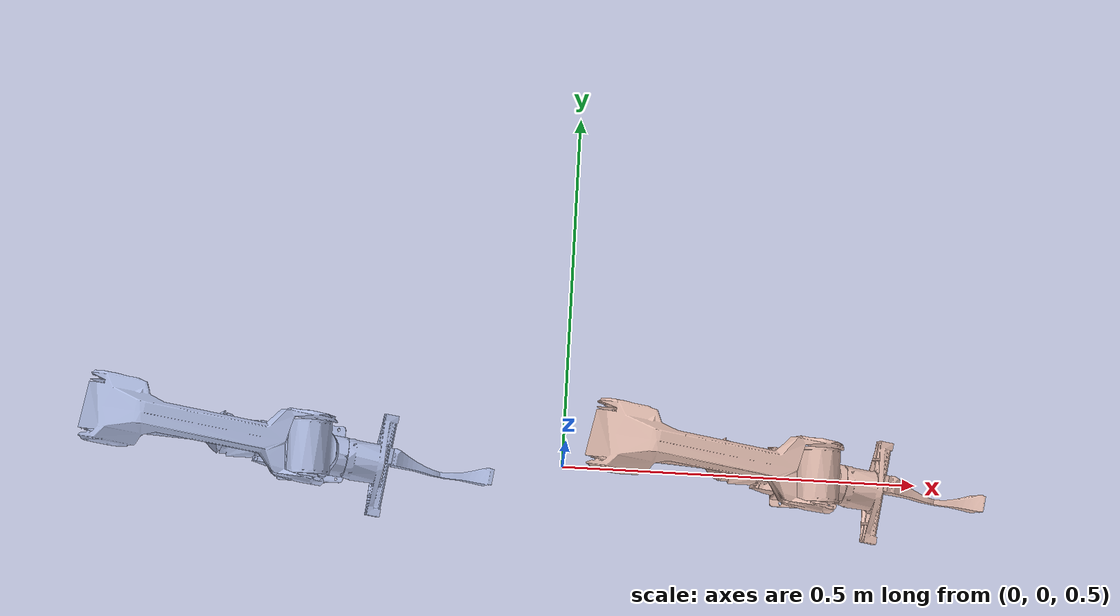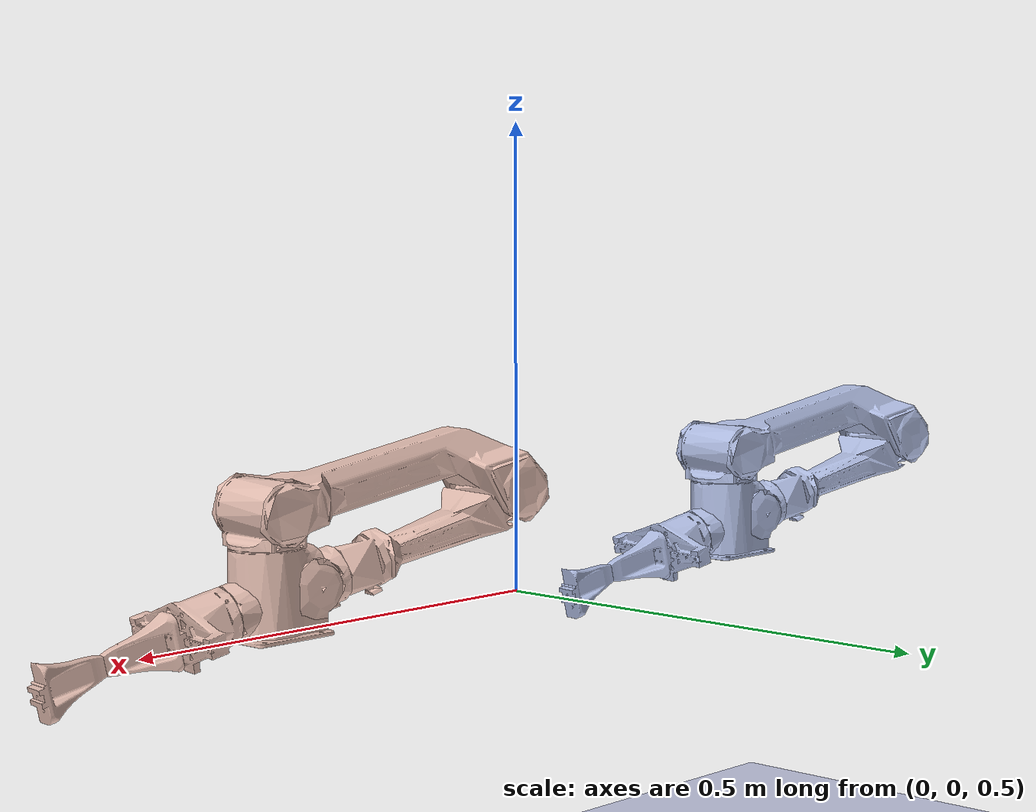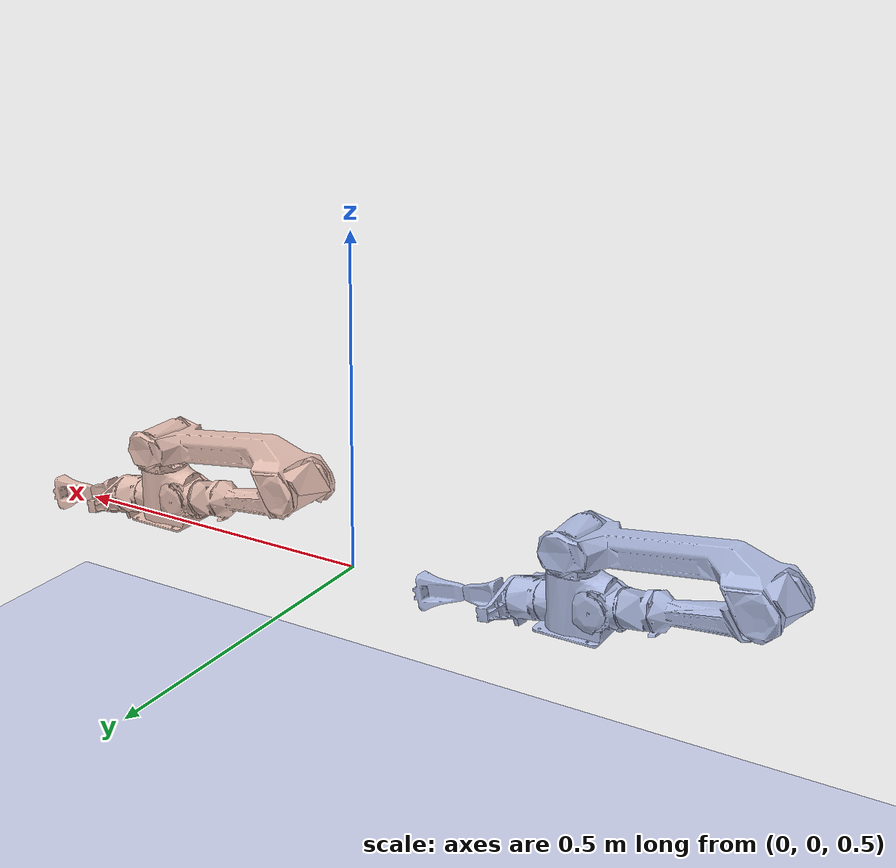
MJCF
<?xml version="1.0" encoding="utf-8"?>
<!-- Piper X Dual Arm Setup - Two robots side by side -->
<mujoco model="piper_dual">
  <compiler angle="radian" meshdir="piper_ros/src/piper_description/meshes"/>

  <option timestep="0.002" gravity="0 0 -9.81"/>

  <default>
    <joint damping="50" armature="0.5"/>
    <geom rgba="0.8 0.82 0.93 1" friction="1 0.005 0.0001"/>
  </default>

  <asset>
    <mesh name="base_link" file="base_link.STL"/>
    <mesh name="link1" file="link1.STL"/>
    <mesh name="link2" file="link2.STL"/>
    <mesh name="link3" file="link3.STL"/>
    <mesh name="link4" file="link4.STL"/>
    <mesh name="link5" file="link5.STL"/>
    <mesh name="link6" file="link6.STL"/>
    <mesh name="gripper_base" file="gripper_base.STL"/>
    <mesh name="link7" file="link7.STL"/>
    <mesh name="link8" file="link8.STL"/>
    <texture type="skybox" builtin="gradient" rgb1="0.3 0.5 0.7" rgb2="0 0 0" width="512" height="512"/>
    <texture name="grid" type="2d" builtin="checker" rgb1="0.2 0.2 0.2" rgb2="0.3 0.3 0.3" width="512" height="512"/>
    <material name="grid" texture="grid" texrepeat="8 8" reflectance="0.2"/>
  </asset>

  <worldbody>
    <light directional="true" diffuse="0.8 0.8 0.8" specular="0.2 0.2 0.2" pos="0 0 5" dir="0 0 -1"/>
    <light directional="true" diffuse="0.4 0.4 0.4" specular="0.1 0.1 0.1" pos="0 5 3" dir="0 -1 -0.5"/>

    <geom name="floor" type="plane" size="2 2 0.1" material="grid"/>

    <!-- ========== LEFT ARM ========== -->
    <body name="base_link_L" pos="-0.35 0 0.5">
      <inertial pos="-0.00474 0.00003 0.0415" mass="1.02"
                diaginertia="0.00283 0.00267 0.00090"/>
      <geom type="mesh" mesh="base_link" rgba="0.7 0.75 0.9 1"/>

      <body name="link1_L" pos="0 0 0.123">
        <inertial pos="0.00012 0.00010 -0.00439" mass="0.71"
                  diaginertia="0.00049 0.00040 0.00044"/>
        <joint name="L_joint1" type="hinge" axis="0 0 1"
               range="-2.618 2.618" damping="80"/>
        <geom type="mesh" mesh="link1" rgba="0.7 0.75 0.9 1"/>

        <body name="link2_L" pos="0 0 0" euler="1.5708 -0.1359 -3.1416">
          <inertial pos="0.199 -0.011 0.001" mass="1.17"
                    diaginertia="0.0679 0.0677 0.00117"/>
          <joint name="L_joint2" type="hinge" axis="0 0 1"
                 range="0 3.14" damping="100"/>
          <geom type="mesh" mesh="link2" rgba="0.7 0.75 0.9 1"/>

          <body name="link3_L" pos="0.28503 0 0" euler="0 0 -1.7939">
            <inertial pos="-0.020 -0.134 -0.0005" mass="0.5"
                      diaginertia="0.0138 0.0136 0.00045"/>
            <joint name="L_joint3" type="hinge" axis="0 0 1"
                   range="-2.967 0" damping="80"/>
            <geom type="mesh" mesh="link3" rgba="0.7 0.75 0.9 1"/>

            <body name="link4_L" pos="-0.021984 -0.25075 0" euler="1.5708 0 0">
              <inertial pos="-0.0001 0.0009 -0.005" mass="0.38"
                        diaginertia="0.00019 0.00019 0.00015"/>
              <joint name="L_joint4" type="hinge" axis="0 0 1"
                     range="-1.745 1.745" damping="40"/>
              <geom type="mesh" mesh="link4" rgba="0.7 0.75 0.9 1"/>

              <body name="link5_L" pos="0 0 0" euler="-1.5708 0 0">
                <inertial pos="-0.00004 -0.0566 -0.0037" mass="0.383"
                          diaginertia="0.00166 0.00164 0.00019"/>
                <joint name="L_joint5" type="hinge" axis="0 0 1"
                       range="-1.22 1.22" damping="40"/>
                <geom type="mesh" mesh="link5" rgba="0.7 0.75 0.9 1"/>

                <body name="link6_L" pos="0.0000883 -0.091 0" euler="1.5708 0 0">
                  <inertial pos="-0.00009 0.00001 -0.002" mass="0.007"
                            diaginertia="0.000001 0.000001 0.000001"/>
                  <joint name="L_joint6" type="hinge" axis="0 0 1"
                         range="-2.0944 2.0944" damping="30"/>
                  <geom type="mesh" mesh="link6" rgba="0.8 0.85 0.95 1"/>

                  <body name="gripper_base_L" pos="0 0 0">
                    <inertial pos="-0.0002 0.00008 0.032" mass="0.45"
                              diaginertia="0.00093 0.00071 0.00039"/>
                    <geom type="mesh" mesh="gripper_base" rgba="0.7 0.75 0.9 1"/>

                    <body name="link7_L" pos="0 0 0.1358" euler="1.5708 0 0">
                      <inertial pos="0.00065 -0.049 0.0097" mass="0.025"
                                diaginertia="0.000074 0.000075 0.000008"/>
                      <joint name="L_joint7" type="slide" axis="0 0 1"
                             range="0 0.035" damping="1"/>
                      <geom type="mesh" mesh="link7" rgba="0.7 0.75 0.9 1"/>
                    </body>

                    <body name="link8_L" pos="0 0 0.1358" euler="1.5708 0 -3.1416">
                      <inertial pos="0.00065 -0.049 0.0097" mass="0.025"
                                diaginertia="0.000074 0.000075 0.000008"/>
                      <joint name="L_joint8" type="slide" axis="0 0 -1"
                             range="-0.035 0" damping="1"/>
                      <geom type="mesh" mesh="link8" rgba="0.7 0.75 0.9 1"/>
                    </body>
                  </body>
                </body>
              </body>
            </body>
          </body>
        </body>
      </body>
    </body>

    <!-- ========== RIGHT ARM ========== -->
    <body name="base_link_R" pos="0.35 0 0.5">
      <inertial pos="-0.00474 0.00003 0.0415" mass="1.02"
                diaginertia="0.00283 0.00267 0.00090"/>
      <geom type="mesh" mesh="base_link" rgba="0.9 0.75 0.7 1"/>

      <body name="link1_R" pos="0 0 0.123">
        <inertial pos="0.00012 0.00010 -0.00439" mass="0.71"
                  diaginertia="0.00049 0.00040 0.00044"/>
        <joint name="R_joint1" type="hinge" axis="0 0 1"
               range="-2.618 2.618" damping="80"/>
        <geom type="mesh" mesh="link1" rgba="0.9 0.75 0.7 1"/>

        <body name="link2_R" pos="0 0 0" euler="1.5708 -0.1359 -3.1416">
          <inertial pos="0.199 -0.011 0.001" mass="1.17"
                    diaginertia="0.0679 0.0677 0.00117"/>
          <joint name="R_joint2" type="hinge" axis="0 0 1"
                 range="0 3.14" damping="100"/>
          <geom type="mesh" mesh="link2" rgba="0.9 0.75 0.7 1"/>

          <body name="link3_R" pos="0.28503 0 0" euler="0 0 -1.7939">
            <inertial pos="-0.020 -0.134 -0.0005" mass="0.5"
                      diaginertia="0.0138 0.0136 0.00045"/>
            <joint name="R_joint3" type="hinge" axis="0 0 1"
                   range="-2.967 0" damping="80"/>
            <geom type="mesh" mesh="link3" rgba="0.9 0.75 0.7 1"/>

            <body name="link4_R" pos="-0.021984 -0.25075 0" euler="1.5708 0 0">
              <inertial pos="-0.0001 0.0009 -0.005" mass="0.38"
                        diaginertia="0.00019 0.00019 0.00015"/>
              <joint name="R_joint4" type="hinge" axis="0 0 1"
                     range="-1.745 1.745" damping="40"/>
              <geom type="mesh" mesh="link4" rgba="0.9 0.75 0.7 1"/>

              <body name="link5_R" pos="0 0 0" euler="-1.5708 0 0">
                <inertial pos="-0.00004 -0.0566 -0.0037" mass="0.383"
                          diaginertia="0.00166 0.00164 0.00019"/>
                <joint name="R_joint5" type="hinge" axis="0 0 1"
                       range="-1.22 1.22" damping="40"/>
                <geom type="mesh" mesh="link5" rgba="0.9 0.75 0.7 1"/>

                <body name="link6_R" pos="0.0000883 -0.091 0" euler="1.5708 0 0">
                  <inertial pos="-0.00009 0.00001 -0.002" mass="0.007"
                            diaginertia="0.000001 0.000001 0.000001"/>
                  <joint name="R_joint6" type="hinge" axis="0 0 1"
                         range="-2.0944 2.0944" damping="30"/>
                  <geom type="mesh" mesh="link6" rgba="0.95 0.85 0.8 1"/>

                  <body name="gripper_base_R" pos="0 0 0">
                    <inertial pos="-0.0002 0.00008 0.032" mass="0.45"
                              diaginertia="0.00093 0.00071 0.00039"/>
                    <geom type="mesh" mesh="gripper_base" rgba="0.9 0.75 0.7 1"/>

                    <body name="link7_R" pos="0 0 0.1358" euler="1.5708 0 0">
                      <inertial pos="0.00065 -0.049 0.0097" mass="0.025"
                                diaginertia="0.000074 0.000075 0.000008"/>
                      <joint name="R_joint7" type="slide" axis="0 0 1"
                             range="0 0.035" damping="1"/>
                      <geom type="mesh" mesh="link7" rgba="0.9 0.75 0.7 1"/>
                    </body>

                    <body name="link8_R" pos="0 0 0.1358" euler="1.5708 0 -3.1416">
                      <inertial pos="0.00065 -0.049 0.0097" mass="0.025"
                                diaginertia="0.000074 0.000075 0.000008"/>
                      <joint name="R_joint8" type="slide" axis="0 0 -1"
                             range="-0.035 0" damping="1"/>
                      <geom type="mesh" mesh="link8" rgba="0.9 0.75 0.7 1"/>
                    </body>
                  </body>
                </body>
              </body>
            </body>
          </body>
        </body>
      </body>
    </body>
  </worldbody>

  <actuator>
    <!-- LEFT ARM servos -->
    <position name="L_servo1" joint="L_joint1" kp="200" kv="20"/>
    <position name="L_servo2" joint="L_joint2" kp="300" kv="30"/>
    <position name="L_servo3" joint="L_joint3" kp="250" kv="25"/>
    <position name="L_servo4" joint="L_joint4" kp="150" kv="15"/>
    <position name="L_servo5" joint="L_joint5" kp="150" kv="15"/>
    <position name="L_servo6" joint="L_joint6" kp="100" kv="10"/>
    <position name="L_gripper1" joint="L_joint7" kp="100"/>
    <position name="L_gripper2" joint="L_joint8" kp="100"/>

    <!-- RIGHT ARM servos -->
    <position name="R_servo1" joint="R_joint1" kp="200" kv="20"/>
    <position name="R_servo2" joint="R_joint2" kp="300" kv="30"/>
    <position name="R_servo3" joint="R_joint3" kp="250" kv="25"/>
    <position name="R_servo4" joint="R_joint4" kp="150" kv="15"/>
    <position name="R_servo5" joint="R_joint5" kp="150" kv="15"/>
    <position name="R_servo6" joint="R_joint6" kp="100" kv="10"/>
    <position name="R_gripper1" joint="R_joint7" kp="100"/>
    <position name="R_gripper2" joint="R_joint8" kp="100"/>
  </actuator>
</mujoco>
